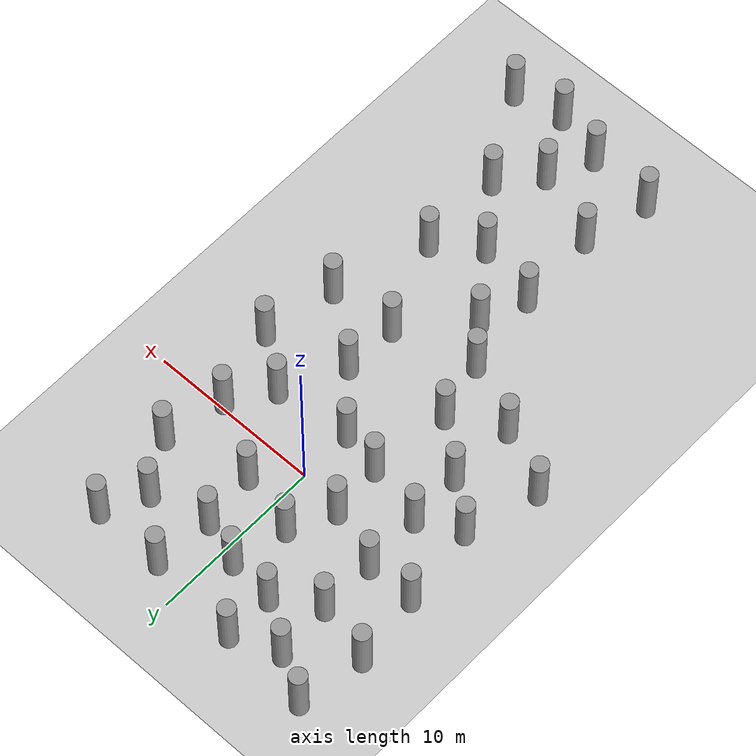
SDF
<sdf version="1.6">
 <world name="default">
  <model name="ground_plane">
   <static>1</static>
   <link name="link">
    <collision name="collision">
     <geometry><plane><normal>0 0 1</normal><size>5000 5000</size></plane></geometry>
     <surface><friction><ode><mu>1</mu><mu2>2</mu2></ode></friction></surface>
    </collision>
    <visual name="runway">
     <cast_shadows>0</cast_shadows>
     <geometry><plane><normal>0 0 1</normal><size>700 700</size></plane></geometry>
     <material>
      <script><uri>file://media/materials/scripts/gazebo.material</uri><name>Gazebo/Gray</name></script>
     </material>
    </visual>
   </link>
  </model>
  <model name="unit_cylinder_clone_0">
   <pose>4.2587 -2.5145 1.71107 0 -0 -0.000112</pose>
   <link name="link">
    <inertial>
     <mass>1</mass>
     <inertia><ixx>0.145833</ixx><ixy>0</ixy><ixz>0</ixz><iyy>0.145833</iyy><iyz>0</iyz><izz>0.125</izz></inertia>
    </inertial>
    <collision name="collision">
     <geometry><cylinder><radius>0.5</radius><length>3.42215</length></cylinder></geometry>
    </collision>
    <visual name="visual">
     <geometry><cylinder><radius>0.5</radius><length>3.42215</length></cylinder></geometry>
     <material>
      <script><name>Gazebo/Grey</name><uri>file://media/materials/scripts/gazebo.material</uri></script>
     </material>
    </visual>
   </link>
  </model>
  <model name="unit_cylinder_clone_1">
   <pose>6.56954 3.40034 1.71107 0 -0 -0.000111</pose>
   <link name="link">
    <inertial>
     <mass>1</mass>
     <inertia><ixx>0.145833</ixx><ixy>0</ixy><ixz>0</ixz><iyy>0.145833</iyy><iyz>0</iyz><izz>0.125</izz></inertia>
    </inertial>
    <collision name="collision">
     <geometry><cylinder><radius>0.5</radius><length>3.42215</length></cylinder></geometry>
    </collision>
    <visual name="visual">
     <geometry><cylinder><radius>0.5</radius><length>3.42215</length></cylinder></geometry>
     <material>
      <script><name>Gazebo/Grey</name><uri>file://media/materials/scripts/gazebo.material</uri></script>
     </material>
    </visual>
   </link>
  </model>
  <model name="unit_cylinder_clone_4">
   <pose>7.10727 -4.58111 1.71107 0 -0 -0.000109</pose>
   <link name="link">
    <inertial>
     <mass>1</mass>
     <inertia><ixx>0.145833</ixx><ixy>0</ixy><ixz>0</ixz><iyy>0.145833</iyy><iyz>0</iyz><izz>0.125</izz></inertia>
    </inertial>
    <collision name="collision">
     <geometry><cylinder><radius>0.5</radius><length>3.42215</length></cylinder></geometry>
    </collision>
    <visual name="visual">
     <geometry><cylinder><radius>0.5</radius><length>3.42215</length></cylinder></geometry>
     <material>
      <script><name>Gazebo/Grey</name><uri>file://media/materials/scripts/gazebo.material</uri></script>
     </material>
    </visual>
   </link>
  </model>
  <model name="unit_cylinder_clone_7">
   <pose>5.99585 8.64685 1.71107 0 -0 -0.000108</pose>
   <link name="link">
    <inertial>
     <mass>1</mass>
     <inertia><ixx>0.145833</ixx><ixy>0</ixy><ixz>0</ixz><iyy>0.145833</iyy><iyz>0</iyz><izz>0.125</izz></inertia>
    </inertial>
    <collision name="collision">
     <geometry><cylinder><radius>0.5</radius><length>3.42215</length></cylinder></geometry>
    </collision>
    <visual name="visual">
     <geometry><cylinder><radius>0.5</radius><length>3.42215</length></cylinder></geometry>
     <material>
      <script><name>Gazebo/Grey</name><uri>file://media/materials/scripts/gazebo.material</uri></script>
     </material>
    </visual>
   </link>
  </model>
  <model name="unit_cylinder_clone_8">
   <pose>1.80795 8.74364 1.71107 0 -0 -0.000108</pose>
   <link name="link">
    <inertial>
     <mass>1</mass>
     <inertia><ixx>0.145833</ixx><ixy>0</ixy><ixz>0</ixz><iyy>0.145833</iyy><iyz>0</iyz><izz>0.125</izz></inertia>
    </inertial>
    <collision name="collision">
     <geometry><cylinder><radius>0.5</radius><length>3.42215</length></cylinder></geometry>
    </collision>
    <visual name="visual">
     <geometry><cylinder><radius>0.5</radius><length>3.42215</length></cylinder></geometry>
     <material>
      <script><name>Gazebo/Grey</name><uri>file://media/materials/scripts/gazebo.material</uri></script>
     </material>
    </visual>
   </link>
  </model>
  <model name="unit_cylinder_clone_9">
   <pose>4.80771 6.22745 1.71107 0 -0 -0.000107</pose>
   <link name="link">
    <inertial>
     <mass>1</mass>
     <inertia><ixx>0.145833</ixx><ixy>0</ixy><ixz>0</ixz><iyy>0.145833</iyy><iyz>0</iyz><izz>0.125</izz></inertia>
    </inertial>
    <collision name="collision">
     <geometry><cylinder><radius>0.5</radius><length>3.42215</length></cylinder></geometry>
    </collision>
    <visual name="visual">
     <geometry><cylinder><radius>0.5</radius><length>3.42215</length></cylinder></geometry>
     <material>
      <script><name>Gazebo/Grey</name><uri>file://media/materials/scripts/gazebo.material</uri></script>
     </material>
    </visual>
   </link>
  </model>
  <model name="unit_cylinder_clone_10">
   <pose>-0.951388 6.18623 1.71107 0 -0 -0.000107</pose>
   <link name="link">
    <inertial>
     <mass>1</mass>
     <inertia><ixx>0.145833</ixx><ixy>0</ixy><ixz>0</ixz><iyy>0.145833</iyy><iyz>0</iyz><izz>0.125</izz></inertia>
    </inertial>
    <collision name="collision">
     <geometry><cylinder><radius>0.5</radius><length>3.42215</length></cylinder></geometry>
    </collision>
    <visual name="visual">
     <geometry><cylinder><radius>0.5</radius><length>3.42215</length></cylinder></geometry>
     <material>
      <script><name>Gazebo/Grey</name><uri>file://media/materials/scripts/gazebo.material</uri></script>
     </material>
    </visual>
   </link>
  </model>
  <model name="unit_cylinder_clone_11">
   <pose>-3.60088 9.24081 1.71107 0 -0 -0.000107</pose>
   <link name="link">
    <inertial>
     <mass>1</mass>
     <inertia><ixx>0.145833</ixx><ixy>0</ixy><ixz>0</ixz><iyy>0.145833</iyy><iyz>0</iyz><izz>0.125</izz></inertia>
    </inertial>
    <collision name="collision">
     <geometry><cylinder><radius>0.5</radius><length>3.42215</length></cylinder></geometry>
    </collision>
    <visual name="visual">
     <geometry><cylinder><radius>0.5</radius><length>3.42215</length></cylinder></geometry>
     <material>
      <script><name>Gazebo/Grey</name><uri>file://media/materials/scripts/gazebo.material</uri></script>
     </material>
    </visual>
   </link>
  </model>
  <model name="unit_cylinder_clone_12">
   <pose>1.49306 5.35546 1.71107 0 -0 -0.000106</pose>
   <link name="link">
    <inertial>
     <mass>1</mass>
     <inertia><ixx>0.145833</ixx><ixy>0</ixy><ixz>0</ixz><iyy>0.145833</iyy><iyz>0</iyz><izz>0.125</izz></inertia>
    </inertial>
    <collision name="collision">
     <geometry><cylinder><radius>0.5</radius><length>3.42215</length></cylinder></geometry>
    </collision>
    <visual name="visual">
     <geometry><cylinder><radius>0.5</radius><length>3.42215</length></cylinder></geometry>
     <material>
      <script><name>Gazebo/Grey</name><uri>file://media/materials/scripts/gazebo.material</uri></script>
     </material>
    </visual>
   </link>
  </model>
  <model name="unit_cylinder_clone_13">
   <pose>-1.59568 3.03197 1.71107 0 -0 -0.000106</pose>
   <link name="link">
    <inertial>
     <mass>1</mass>
     <inertia><ixx>0.145833</ixx><ixy>0</ixy><ixz>0</ixz><iyy>0.145833</iyy><iyz>0</iyz><izz>0.125</izz></inertia>
    </inertial>
    <collision name="collision">
     <geometry><cylinder><radius>0.5</radius><length>3.42215</length></cylinder></geometry>
    </collision>
    <visual name="visual">
     <geometry><cylinder><radius>0.5</radius><length>3.42215</length></cylinder></geometry>
     <material>
      <script><name>Gazebo/Grey</name><uri>file://media/materials/scripts/gazebo.material</uri></script>
     </material>
    </visual>
   </link>
  </model>
  <model name="unit_cylinder_clone_14">
   <pose>-3.65581 6.44982 1.71107 0 -0 -0.000105</pose>
   <link name="link">
    <inertial>
     <mass>1</mass>
     <inertia><ixx>0.145833</ixx><ixy>0</ixy><ixz>0</ixz><iyy>0.145833</iyy><iyz>0</iyz><izz>0.125</izz></inertia>
    </inertial>
    <collision name="collision">
     <geometry><cylinder><radius>0.5</radius><length>3.42215</length></cylinder></geometry>
    </collision>
    <visual name="visual">
     <geometry><cylinder><radius>0.5</radius><length>3.42215</length></cylinder></geometry>
     <material>
      <script><name>Gazebo/Grey</name><uri>file://media/materials/scripts/gazebo.material</uri></script>
     </material>
    </visual>
   </link>
  </model>
  <model name="unit_cylinder_clone_15">
   <pose>-6.25931 8.19874 1.71107 0 -0 -0.000105</pose>
   <link name="link">
    <inertial>
     <mass>1</mass>
     <inertia><ixx>0.145833</ixx><ixy>0</ixy><ixz>0</ixz><iyy>0.145833</iyy><iyz>0</iyz><izz>0.125</izz></inertia>
    </inertial>
    <collision name="collision">
     <geometry><cylinder><radius>0.5</radius><length>3.42215</length></cylinder></geometry>
    </collision>
    <visual name="visual">
     <geometry><cylinder><radius>0.5</radius><length>3.42215</length></cylinder></geometry>
     <material>
      <script><name>Gazebo/Grey</name><uri>file://media/materials/scripts/gazebo.material</uri></script>
     </material>
    </visual>
   </link>
  </model>
  <model name="unit_cylinder_clone_16">
   <pose>-8.67948 9.53424 1.71107 0 -0 -0.000105</pose>
   <link name="link">
    <inertial>
     <mass>1</mass>
     <inertia><ixx>0.145833</ixx><ixy>0</ixy><ixz>0</ixz><iyy>0.145833</iyy><iyz>0</iyz><izz>0.125</izz></inertia>
    </inertial>
    <collision name="collision">
     <geometry><cylinder><radius>0.5</radius><length>3.42215</length></cylinder></geometry>
    </collision>
    <visual name="visual">
     <geometry><cylinder><radius>0.5</radius><length>3.42215</length></cylinder></geometry>
     <material>
      <script><name>Gazebo/Grey</name><uri>file://media/materials/scripts/gazebo.material</uri></script>
     </material>
    </visual>
   </link>
  </model>
  <model name="unit_cylinder_clone_18">
   <pose>-9.34696 5.72691 1.71107 0 -0 -0.000104</pose>
   <link name="link">
    <inertial>
     <mass>1</mass>
     <inertia><ixx>0.145833</ixx><ixy>0</ixy><ixz>0</ixz><iyy>0.145833</iyy><iyz>0</iyz><izz>0.125</izz></inertia>
    </inertial>
    <collision name="collision">
     <geometry><cylinder><radius>0.5</radius><length>3.42215</length></cylinder></geometry>
    </collision>
    <visual name="visual">
     <geometry><cylinder><radius>0.5</radius><length>3.42215</length></cylinder></geometry>
     <material>
      <script><name>Gazebo/Grey</name><uri>file://media/materials/scripts/gazebo.material</uri></script>
     </material>
    </visual>
   </link>
  </model>
  <model name="unit_cylinder_clone_17">
   <pose>-6.0679 4.93113 1.71107 0 -0 -0.000103</pose>
   <link name="link">
    <inertial>
     <mass>1</mass>
     <inertia><ixx>0.145833</ixx><ixy>0</ixy><ixz>0</ixz><iyy>0.145833</iyy><iyz>0</iyz><izz>0.125</izz></inertia>
    </inertial>
    <collision name="collision">
     <geometry><cylinder><radius>0.5</radius><length>3.42215</length></cylinder></geometry>
    </collision>
    <visual name="visual">
     <geometry><cylinder><radius>0.5</radius><length>3.42215</length></cylinder></geometry>
     <material>
      <script><name>Gazebo/Grey</name><uri>file://media/materials/scripts/gazebo.material</uri></script>
     </material>
    </visual>
   </link>
  </model>
  <model name="unit_cylinder_clone_19">
   <pose>-6.09644 1.70551 1.71107 0 -0 -0.000229</pose>
   <link name="link">
    <inertial>
     <mass>1</mass>
     <inertia><ixx>0.145833</ixx><ixy>0</ixy><ixz>0</ixz><iyy>0.145833</iyy><iyz>0</iyz><izz>0.125</izz></inertia>
    </inertial>
    <collision name="collision">
     <geometry><cylinder><radius>0.5</radius><length>3.42215</length></cylinder></geometry>
    </collision>
    <visual name="visual">
     <geometry><cylinder><radius>0.5</radius><length>3.42215</length></cylinder></geometry>
     <material>
      <script><name>Gazebo/Grey</name><uri>file://media/materials/scripts/gazebo.material</uri></script>
     </material>
    </visual>
   </link>
  </model>
  <model name="unit_cylinder_clone_20">
   <pose>-5.94513 -1.73957 1.71107 0 -0 -0.000234</pose>
   <link name="link">
    <inertial>
     <mass>1</mass>
     <inertia><ixx>0.145833</ixx><ixy>0</ixy><ixz>0</ixz><iyy>0.145833</iyy><iyz>0</iyz><izz>0.125</izz></inertia>
    </inertial>
    <collision name="collision">
     <geometry><cylinder><radius>0.5</radius><length>3.42215</length></cylinder></geometry>
    </collision>
    <visual name="visual">
     <geometry><cylinder><radius>0.5</radius><length>3.42215</length></cylinder></geometry>
     <material>
      <script><name>Gazebo/Grey</name><uri>file://media/materials/scripts/gazebo.material</uri></script>
     </material>
    </visual>
   </link>
  </model>
  <model name="unit_cylinder_clone_21">
   <pose>-5.80792 -4.89162 1.71107 0 -0 -0.000237</pose>
   <link name="link">
    <inertial>
     <mass>1</mass>
     <inertia><ixx>0.145833</ixx><ixy>0</ixy><ixz>0</ixz><iyy>0.145833</iyy><iyz>0</iyz><izz>0.125</izz></inertia>
    </inertial>
    <collision name="collision">
     <geometry><cylinder><radius>0.5</radius><length>3.42215</length></cylinder></geometry>
    </collision>
    <visual name="visual">
     <geometry><cylinder><radius>0.5</radius><length>3.42215</length></cylinder></geometry>
     <material>
      <script><name>Gazebo/Grey</name><uri>file://media/materials/scripts/gazebo.material</uri></script>
     </material>
    </visual>
   </link>
  </model>
  <model name="unit_cylinder_clone_22">
   <pose>-5.93362 -8.80155 1.71107 0 -0 -0.00024</pose>
   <link name="link">
    <inertial>
     <mass>1</mass>
     <inertia><ixx>0.145833</ixx><ixy>0</ixy><ixz>0</ixz><iyy>0.145833</iyy><iyz>0</iyz><izz>0.125</izz></inertia>
    </inertial>
    <collision name="collision">
     <geometry><cylinder><radius>0.5</radius><length>3.42215</length></cylinder></geometry>
    </collision>
    <visual name="visual">
     <geometry><cylinder><radius>0.5</radius><length>3.42215</length></cylinder></geometry>
     <material>
      <script><name>Gazebo/Grey</name><uri>file://media/materials/scripts/gazebo.material</uri></script>
     </material>
    </visual>
   </link>
  </model>
  <model name="unit_cylinder_clone_23">
   <pose>-8.85284 1.66767 1.71107 0 -0 -0.000244</pose>
   <link name="link">
    <inertial>
     <mass>1</mass>
     <inertia><ixx>0.145833</ixx><ixy>0</ixy><ixz>0</ixz><iyy>0.145833</iyy><iyz>0</iyz><izz>0.125</izz></inertia>
    </inertial>
    <collision name="collision">
     <geometry><cylinder><radius>0.5</radius><length>3.42215</length></cylinder></geometry>
    </collision>
    <visual name="visual">
     <geometry><cylinder><radius>0.5</radius><length>3.42215</length></cylinder></geometry>
     <material>
      <script><name>Gazebo/Grey</name><uri>file://media/materials/scripts/gazebo.material</uri></script>
     </material>
    </visual>
   </link>
  </model>
  <model name="unit_cylinder_clone_24">
   <pose>-8.28748 -2.93178 1.71107 0 -0 -0.000246</pose>
   <link name="link">
    <inertial>
     <mass>1</mass>
     <inertia><ixx>0.145833</ixx><ixy>0</ixy><ixz>0</ixz><iyy>0.145833</iyy><iyz>0</iyz><izz>0.125</izz></inertia>
    </inertial>
    <collision name="collision">
     <geometry><cylinder><radius>0.5</radius><length>3.42215</length></cylinder></geometry>
    </collision>
    <visual name="visual">
     <geometry><cylinder><radius>0.5</radius><length>3.42215</length></cylinder></geometry>
     <material>
      <script><name>Gazebo/Grey</name><uri>file://media/materials/scripts/gazebo.material</uri></script>
     </material>
    </visual>
   </link>
  </model>
  <model name="unit_cylinder_clone_25">
   <pose>-9.45043 -7.13553 1.71107 0 -0 -0.00025</pose>
   <link name="link">
    <inertial>
     <mass>1</mass>
     <inertia><ixx>0.145833</ixx><ixy>0</ixy><ixz>0</ixz><iyy>0.145833</iyy><iyz>0</iyz><izz>0.125</izz></inertia>
    </inertial>
    <collision name="collision">
     <geometry><cylinder><radius>0.5</radius><length>3.42215</length></cylinder></geometry>
    </collision>
    <visual name="visual">
     <geometry><cylinder><radius>0.5</radius><length>3.42215</length></cylinder></geometry>
     <material>
      <script><name>Gazebo/Grey</name><uri>file://media/materials/scripts/gazebo.material</uri></script>
     </material>
    </visual>
   </link>
  </model>
  <model name="unit_cylinder_clone_26">
   <pose>-3.02391 -7.20802 1.71107 0 -0 -0.000253</pose>
   <link name="link">
    <inertial>
     <mass>1</mass>
     <inertia><ixx>0.145833</ixx><ixy>0</ixy><ixz>0</ixz><iyy>0.145833</iyy><iyz>0</iyz><izz>0.125</izz></inertia>
    </inertial>
    <collision name="collision">
     <geometry><cylinder><radius>0.5</radius><length>3.42215</length></cylinder></geometry>
    </collision>
    <visual name="visual">
     <geometry><cylinder><radius>0.5</radius><length>3.42215</length></cylinder></geometry>
     <material>
      <script><name>Gazebo/Grey</name><uri>file://media/materials/scripts/gazebo.material</uri></script>
     </material>
    </visual>
   </link>
  </model>
  <model name="unit_cylinder_clone_27">
   <pose>-2.48371 -2.53889 1.71107 0 -0 -0.000255</pose>
   <link name="link">
    <inertial>
     <mass>1</mass>
     <inertia><ixx>0.145833</ixx><ixy>0</ixy><ixz>0</ixz><iyy>0.145833</iyy><iyz>0</iyz><izz>0.125</izz></inertia>
    </inertial>
    <collision name="collision">
     <geometry><cylinder><radius>0.5</radius><length>3.42215</length></cylinder></geometry>
    </collision>
    <visual name="visual">
     <geometry><cylinder><radius>0.5</radius><length>3.42215</length></cylinder></geometry>
     <material>
      <script><name>Gazebo/Grey</name><uri>file://media/materials/scripts/gazebo.material</uri></script>
     </material>
    </visual>
   </link>
  </model>
  <model name="unit_cylinder_clone_28">
   <pose>-2.79834 0.542672 1.71107 0 -0 -0.000258</pose>
   <link name="link">
    <inertial>
     <mass>1</mass>
     <inertia><ixx>0.145833</ixx><ixy>0</ixy><ixz>0</ixz><iyy>0.145833</iyy><iyz>0</iyz><izz>0.125</izz></inertia>
    </inertial>
    <collision name="collision">
     <geometry><cylinder><radius>0.5</radius><length>3.42215</length></cylinder></geometry>
    </collision>
    <visual name="visual">
     <geometry><cylinder><radius>0.5</radius><length>3.42215</length></cylinder></geometry>
     <material>
      <script><name>Gazebo/Grey</name><uri>file://media/materials/scripts/gazebo.material</uri></script>
     </material>
    </visual>
   </link>
  </model>
  <model name="unit_cylinder_clone_29">
   <pose>-0.098668 -3.04392 1.71107 0 -0 -0.000261</pose>
   <link name="link">
    <inertial>
     <mass>1</mass>
     <inertia><ixx>0.145833</ixx><ixy>0</ixy><ixz>0</ixz><iyy>0.145833</iyy><iyz>0</iyz><izz>0.125</izz></inertia>
    </inertial>
    <collision name="collision">
     <geometry><cylinder><radius>0.5</radius><length>3.42215</length></cylinder></geometry>
    </collision>
    <visual name="visual">
     <geometry><cylinder><radius>0.5</radius><length>3.42215</length></cylinder></geometry>
     <material>
      <script><name>Gazebo/Grey</name><uri>file://media/materials/scripts/gazebo.material</uri></script>
     </material>
    </visual>
   </link>
  </model>
  <model name="unit_cylinder_clone_30">
   <pose>1.87292 2.1579 1.71107 0 -0 -0.000265</pose>
   <link name="link">
    <inertial>
     <mass>1</mass>
     <inertia><ixx>0.145833</ixx><ixy>0</ixy><ixz>0</ixz><iyy>0.145833</iyy><iyz>0</iyz><izz>0.125</izz></inertia>
    </inertial>
    <collision name="collision">
     <geometry><cylinder><radius>0.5</radius><length>3.42215</length></cylinder></geometry>
    </collision>
    <visual name="visual">
     <geometry><cylinder><radius>0.5</radius><length>3.42215</length></cylinder></geometry>
     <material>
      <script><name>Gazebo/Grey</name><uri>file://media/materials/scripts/gazebo.material</uri></script>
     </material>
    </visual>
   </link>
  </model>
  <model name="unit_cylinder_clone_34">
   <pose>6.31813 -8.8448 1.71107 0 -0 -0.000282</pose>
   <link name="link">
    <inertial>
     <mass>1</mass>
     <inertia><ixx>0.145833</ixx><ixy>0</ixy><ixz>0</ixz><iyy>0.145833</iyy><iyz>0</iyz><izz>0.125</izz></inertia>
    </inertial>
    <collision name="collision">
     <geometry><cylinder><radius>0.5</radius><length>3.42215</length></cylinder></geometry>
    </collision>
    <visual name="visual">
     <geometry><cylinder><radius>0.5</radius><length>3.42215</length></cylinder></geometry>
     <material>
      <script><name>Gazebo/Grey</name><uri>file://media/materials/scripts/gazebo.material</uri></script>
     </material>
    </visual>
   </link>
  </model>
  <model name="unit_cylinder_clone_35">
   <pose>2.50449 -9.2082 1.71107 0 -0 -0.000286</pose>
   <link name="link">
    <inertial>
     <mass>1</mass>
     <inertia><ixx>0.145833</ixx><ixy>0</ixy><ixz>0</ixz><iyy>0.145833</iyy><iyz>0</iyz><izz>0.125</izz></inertia>
    </inertial>
    <collision name="collision">
     <geometry><cylinder><radius>0.5</radius><length>3.42215</length></cylinder></geometry>
    </collision>
    <visual name="visual">
     <geometry><cylinder><radius>0.5</radius><length>3.42215</length></cylinder></geometry>
     <material>
      <script><name>Gazebo/Grey</name><uri>file://media/materials/scripts/gazebo.material</uri></script>
     </material>
    </visual>
   </link>
  </model>
  <model name="unit_cylinder_clone_3_clone_32">
   <pose>7.78216 -24.5789 1.71107 0 -0 -0.00011</pose>
   <link name="link">
    <inertial>
     <mass>1</mass>
     <inertia><ixx>0.145833</ixx><ixy>0</ixy><ixz>0</ixz><iyy>0.145833</iyy><iyz>0</iyz><izz>0.125</izz></inertia>
    </inertial>
    <collision name="collision">
     <geometry><cylinder><radius>0.5</radius><length>3.42215</length></cylinder></geometry>
    </collision>
    <visual name="visual">
     <geometry><cylinder><radius>0.5</radius><length>3.42215</length></cylinder></geometry>
     <material>
      <script><name>Gazebo/Grey</name><uri>file://media/materials/scripts/gazebo.material</uri></script>
     </material>
    </visual>
   </link>
  </model>
  <model name="unit_cylinder_clone_3_clone_37">
   <pose>4.8327 -25.1507 1.71107 0 -0 -0.00011</pose>
   <link name="link">
    <inertial>
     <mass>1</mass>
     <inertia><ixx>0.145833</ixx><ixy>0</ixy><ixz>0</ixz><iyy>0.145833</iyy><iyz>0</iyz><izz>0.125</izz></inertia>
    </inertial>
    <collision name="collision">
     <geometry><cylinder><radius>0.5</radius><length>3.42215</length></cylinder></geometry>
    </collision>
    <visual name="visual">
     <geometry><cylinder><radius>0.5</radius><length>3.42215</length></cylinder></geometry>
     <material>
      <script><name>Gazebo/Grey</name><uri>file://media/materials/scripts/gazebo.material</uri></script>
     </material>
    </visual>
   </link>
  </model>
  <model name="unit_cylinder_clone_3_clone_38">
   <pose>1.84034 -24.3219 1.71107 0 -0 -0.000109</pose>
   <link name="link">
    <inertial>
     <mass>1</mass>
     <inertia><ixx>0.145833</ixx><ixy>0</ixy><ixz>0</ixz><iyy>0.145833</iyy><iyz>0</iyz><izz>0.125</izz></inertia>
    </inertial>
    <collision name="collision">
     <geometry><cylinder><radius>0.5</radius><length>3.42215</length></cylinder></geometry>
    </collision>
    <visual name="visual">
     <geometry><cylinder><radius>0.5</radius><length>3.42215</length></cylinder></geometry>
     <material>
      <script><name>Gazebo/Grey</name><uri>file://media/materials/scripts/gazebo.material</uri></script>
     </material>
    </visual>
   </link>
  </model>
  <model name="unit_cylinder_clone_3_clone_39">
   <pose>-2.10248 -23.981 1.71107 0 -0 -0.00011</pose>
   <link name="link">
    <inertial>
     <mass>1</mass>
     <inertia><ixx>0.145833</ixx><ixy>0</ixy><ixz>0</ixz><iyy>0.145833</iyy><iyz>0</iyz><izz>0.125</izz></inertia>
    </inertial>
    <collision name="collision">
     <geometry><cylinder><radius>0.5</radius><length>3.42215</length></cylinder></geometry>
    </collision>
    <visual name="visual">
     <geometry><cylinder><radius>0.5</radius><length>3.42215</length></cylinder></geometry>
     <material>
      <script><name>Gazebo/Grey</name><uri>file://media/materials/scripts/gazebo.material</uri></script>
     </material>
    </visual>
   </link>
  </model>
  <model name="unit_cylinder_clone_3_clone_43">
   <pose>2.17107 -16.1228 1.71107 0 -0 -0.00011</pose>
   <link name="link">
    <inertial>
     <mass>1</mass>
     <inertia><ixx>0.145833</ixx><ixy>0</ixy><ixz>0</ixz><iyy>0.145833</iyy><iyz>0</iyz><izz>0.125</izz></inertia>
    </inertial>
    <collision name="collision">
     <geometry><cylinder><radius>0.5</radius><length>3.42215</length></cylinder></geometry>
    </collision>
    <visual name="visual">
     <geometry><cylinder><radius>0.5</radius><length>3.42215</length></cylinder></geometry>
     <material>
      <script><name>Gazebo/Grey</name><uri>file://media/materials/scripts/gazebo.material</uri></script>
     </material>
    </visual>
   </link>
  </model>
  <model name="unit_cylinder_clone_3_clone_44">
   <pose>-0.506033 -12.6238 1.71107 0 -0 -0.00011</pose>
   <link name="link">
    <inertial>
     <mass>1</mass>
     <inertia><ixx>0.145833</ixx><ixy>0</ixy><ixz>0</ixz><iyy>0.145833</iyy><iyz>0</iyz><izz>0.125</izz></inertia>
    </inertial>
    <collision name="collision">
     <geometry><cylinder><radius>0.5</radius><length>3.42215</length></cylinder></geometry>
    </collision>
    <visual name="visual">
     <geometry><cylinder><radius>0.5</radius><length>3.42215</length></cylinder></geometry>
     <material>
      <script><name>Gazebo/Grey</name><uri>file://media/materials/scripts/gazebo.material</uri></script>
     </material>
    </visual>
   </link>
  </model>
  <model name="unit_cylinder_clone_3_clone_48">
   <pose>2.93075 -21.7169 1.71107 0 -0 -0.000109</pose>
   <link name="link">
    <inertial>
     <mass>1</mass>
     <inertia><ixx>0.145833</ixx><ixy>0</ixy><ixz>0</ixz><iyy>0.145833</iyy><iyz>0</iyz><izz>0.125</izz></inertia>
    </inertial>
    <collision name="collision">
     <geometry><cylinder><radius>0.5</radius><length>3.42215</length></cylinder></geometry>
    </collision>
    <visual name="visual">
     <geometry><cylinder><radius>0.5</radius><length>3.42215</length></cylinder></geometry>
     <material>
      <script><name>Gazebo/Grey</name><uri>file://media/materials/scripts/gazebo.material</uri></script>
     </material>
    </visual>
   </link>
  </model>
  <model name="unit_cylinder_clone_3_clone_49">
   <pose>-1.44074 -15.3108 1.71107 0 -0 -0.00011</pose>
   <link name="link">
    <inertial>
     <mass>1</mass>
     <inertia><ixx>0.145833</ixx><ixy>0</ixy><ixz>0</ixz><iyy>0.145833</iyy><iyz>0</iyz><izz>0.125</izz></inertia>
    </inertial>
    <collision name="collision">
     <geometry><cylinder><radius>0.5</radius><length>3.42215</length></cylinder></geometry>
    </collision>
    <visual name="visual">
     <geometry><cylinder><radius>0.5</radius><length>3.42215</length></cylinder></geometry>
     <material>
      <script><name>Gazebo/Grey</name><uri>file://media/materials/scripts/gazebo.material</uri></script>
     </material>
    </visual>
   </link>
  </model>
  <model name="unit_cylinder_clone_3_clone_50">
   <pose>-2.15087 -10.5663 1.71107 0 -0 -0.000109</pose>
   <link name="link">
    <inertial>
     <mass>1</mass>
     <inertia><ixx>0.145833</ixx><ixy>0</ixy><ixz>0</ixz><iyy>0.145833</iyy><iyz>0</iyz><izz>0.125</izz></inertia>
    </inertial>
    <collision name="collision">
     <geometry><cylinder><radius>0.5</radius><length>3.42215</length></cylinder></geometry>
    </collision>
    <visual name="visual">
     <geometry><cylinder><radius>0.5</radius><length>3.42215</length></cylinder></geometry>
     <material>
      <script><name>Gazebo/Grey</name><uri>file://media/materials/scripts/gazebo.material</uri></script>
     </material>
    </visual>
   </link>
  </model>
  <model name="unit_cylinder_clone_3_clone_19_clone_1">
   <pose>4.79591 -19.476 1.71107 0 -0 -0.000104</pose>
   <link name="link">
    <inertial>
     <mass>1</mass>
     <inertia><ixx>0.145833</ixx><ixy>0</ixy><ixz>0</ixz><iyy>0.145833</iyy><iyz>0</iyz><izz>0.125</izz></inertia>
    </inertial>
    <collision name="collision">
     <geometry><cylinder><radius>0.5</radius><length>3.42215</length></cylinder></geometry>
    </collision>
    <visual name="visual">
     <geometry><cylinder><radius>0.5</radius><length>3.42215</length></cylinder></geometry>
     <material>
      <script><name>Gazebo/Grey</name><uri>file://media/materials/scripts/gazebo.material</uri></script>
     </material>
    </visual>
   </link>
  </model>
  <model name="unit_cylinder_clone_3_clone_19_clone_2">
   <pose>-1.21623 -20.0919 1.71107 0 -0 -0.000104</pose>
   <link name="link">
    <inertial>
     <mass>1</mass>
     <inertia><ixx>0.145833</ixx><ixy>0</ixy><ixz>0</ixz><iyy>0.145833</iyy><iyz>0</iyz><izz>0.125</izz></inertia>
    </inertial>
    <collision name="collision">
     <geometry><cylinder><radius>0.5</radius><length>3.42215</length></cylinder></geometry>
    </collision>
    <visual name="visual">
     <geometry><cylinder><radius>0.5</radius><length>3.42215</length></cylinder></geometry>
     <material>
      <script><name>Gazebo/Grey</name><uri>file://media/materials/scripts/gazebo.material</uri></script>
     </material>
    </visual>
   </link>
  </model>
  <model name="unit_cylinder_clone_3_clone_19_clone_3">
   <pose>4.628 -14.3479 1.71107 0 -0 -0.000104</pose>
   <link name="link">
    <inertial>
     <mass>1</mass>
     <inertia><ixx>0.145833</ixx><ixy>0</ixy><ixz>0</ixz><iyy>0.145833</iyy><iyz>0</iyz><izz>0.125</izz></inertia>
    </inertial>
    <collision name="collision">
     <geometry><cylinder><radius>0.5</radius><length>3.42215</length></cylinder></geometry>
    </collision>
    <visual name="visual">
     <geometry><cylinder><radius>0.5</radius><length>3.42215</length></cylinder></geometry>
     <material>
      <script><name>Gazebo/Grey</name><uri>file://media/materials/scripts/gazebo.material</uri></script>
     </material>
    </visual>
   </link>
  </model>
  <model name="unit_cylinder_clone_3_clone_19_clone_12">
   <pose>2.59408 -6.03322 1.71107 0 -0 -0.000105</pose>
   <link name="link">
    <inertial>
     <mass>1</mass>
     <inertia><ixx>0.145833</ixx><ixy>0</ixy><ixz>0</ixz><iyy>0.145833</iyy><iyz>0</iyz><izz>0.125</izz></inertia>
    </inertial>
    <collision name="collision">
     <geometry><cylinder><radius>0.5</radius><length>3.42215</length></cylinder></geometry>
    </collision>
    <visual name="visual">
     <geometry><cylinder><radius>0.5</radius><length>3.42215</length></cylinder></geometry>
     <material>
      <script><name>Gazebo/Grey</name><uri>file://media/materials/scripts/gazebo.material</uri></script>
     </material>
    </visual>
   </link>
  </model>
  <model name="unit_cylinder_clone">
   <link name="link">
    <inertial>
     <mass>1</mass>
     <inertia><ixx>0.145833</ixx><ixy>0</ixy><ixz>0</ixz><iyy>0.145833</iyy><iyz>0</iyz><izz>0.125</izz></inertia>
    </inertial>
    <visual name="visual">
     <geometry><cylinder><radius>0.5</radius><length>3.42215</length></cylinder></geometry>
     <material>
      <script><name>Gazebo/Grey</name><uri>file://media/materials/scripts/gazebo.material</uri></script>
      <shader type="pixel"><normal_map>__default__</normal_map></shader>
     </material>
    </visual>
   </link>
   <static>0</static>
   <pose>5.83807 -0.166676 1.71107 0 0 -0.000113</pose>
  </model>
 </world>
</sdf>
